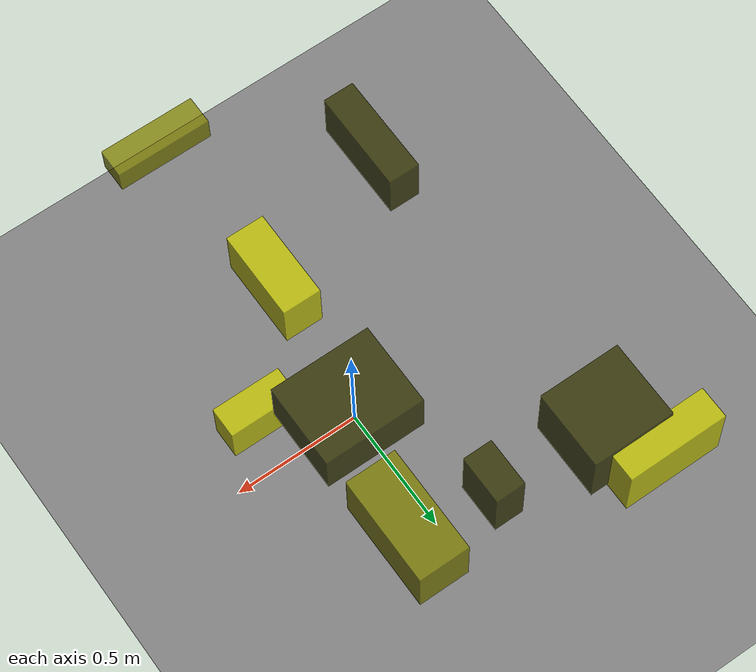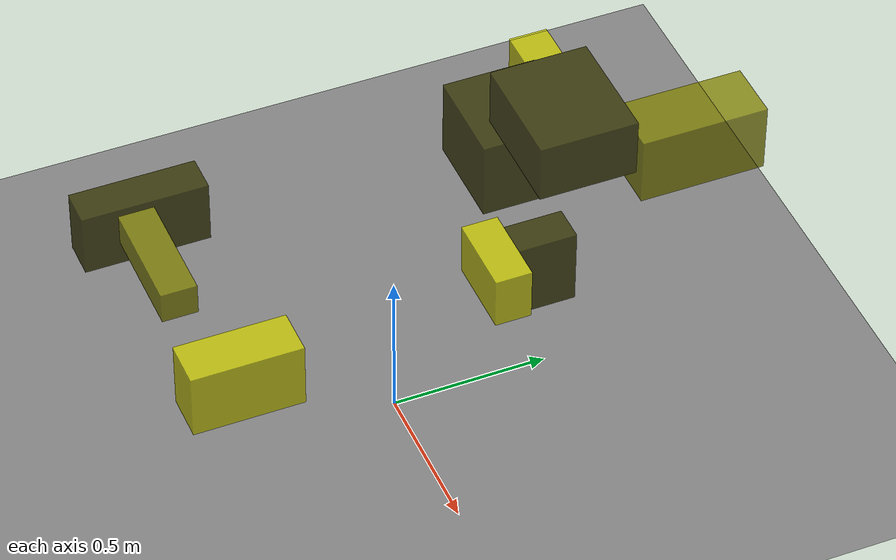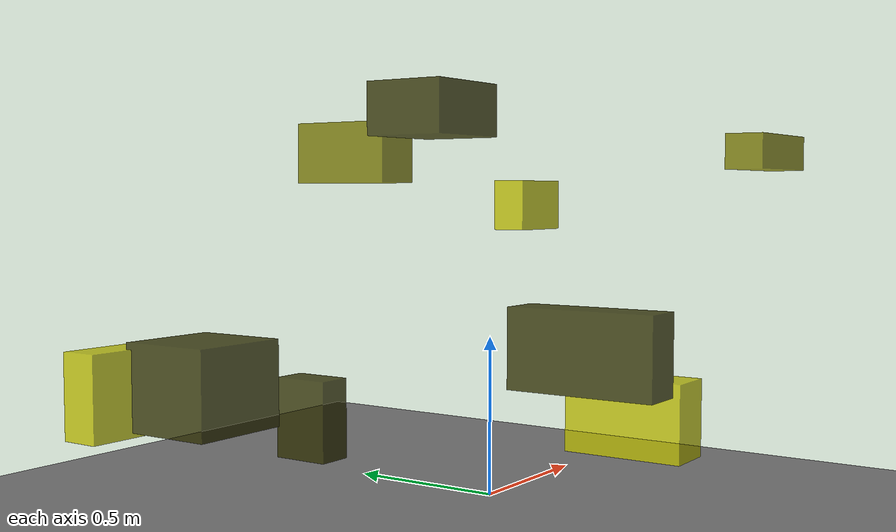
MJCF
<?xml version="1.0"?>
<mujoco model="obstacle_scene">
  <compiler angle="radian" coordinate="local"/>
  <option timestep="0.001" gravity="0 0 -9.81"/>

  <asset>
    <material name="obstacle_mat" rgba="0.8 0.8 0.0 0.8"/>
    <material name="ground_mat" rgba="0.5 0.5 0.5 1"/>
  </asset>

  <worldbody>
    <!-- Ground plane -->
    <geom name="ground" type="plane" size="3 3 0.1" material="ground_mat"/>

    <!-- Obstacles -->
    <body name="obstacle_0" pos="-0.609011 0.641123 0.370152">
      <geom name="obs_0" type="box" size="0.163879 0.155838 0.135810" rgba="0.2 0.2 0.0 0.8"/>
    </body>
    <body name="obstacle_1" pos="0.325913 0.793925 1.097754">
      <geom name="obs_1" type="box" size="0.091586 0.195133 0.109657" rgba="0.5 0.5 0.0 0.8"/>
    </body>
    <body name="obstacle_2" pos="-0.008189 -0.494241 0.305752">
      <geom name="obs_2" type="box" size="0.076423 0.180163 0.113579" rgba="0.8 0.8 0.0 0.8"/>
    </body>
    <body name="obstacle_3" pos="-0.517870 -0.613965 0.555267">
      <geom name="obs_3" type="box" size="0.060540 0.201279 0.106463" rgba="0.2 0.2 0.0 0.8"/>
    </body>
    <body name="obstacle_4" pos="0.210352 -0.799833 1.066695">
      <geom name="obs_4" type="box" size="0.174263 0.053772 0.049597" rgba="0.5 0.5 0.0 0.8"/>
    </body>
    <body name="obstacle_5" pos="0.450698 0.132162 0.909618">
      <geom name="obs_5" type="box" size="0.124798 0.055479 0.083457" rgba="0.8 0.8 0.0 0.8"/>
    </body>
    <body name="obstacle_6" pos="-0.196078 0.566190 0.215824">
      <geom name="obs_6" type="box" size="0.059235 0.097937 0.132108" rgba="0.2 0.2 0.0 0.8"/>
    </body>
    <body name="obstacle_7" pos="-0.697381 0.690645 0.375145">
      <geom name="obs_7" type="box" size="0.068811 0.092761 0.100561" rgba="0.5 0.5 0.0 0.8"/>
    </body>
    <body name="obstacle_8" pos="-0.717591 0.839778 0.351994">
      <geom name="obs_8" type="box" size="0.200448 0.064012 0.133078" rgba="0.8 0.8 0.0 0.8"/>
    </body>
    <body name="obstacle_9" pos="0.276235 0.409424 1.239631">
      <geom name="obs_9" type="box" size="0.179684 0.149592 0.092764" rgba="0.2 0.2 0.0 0.8"/>
    </body>
  </worldbody>
</mujoco>
